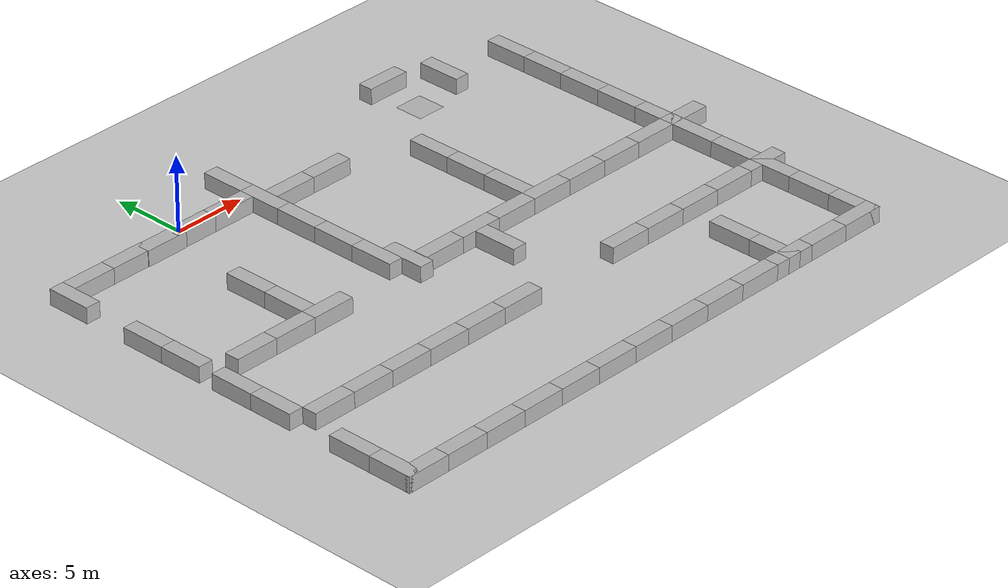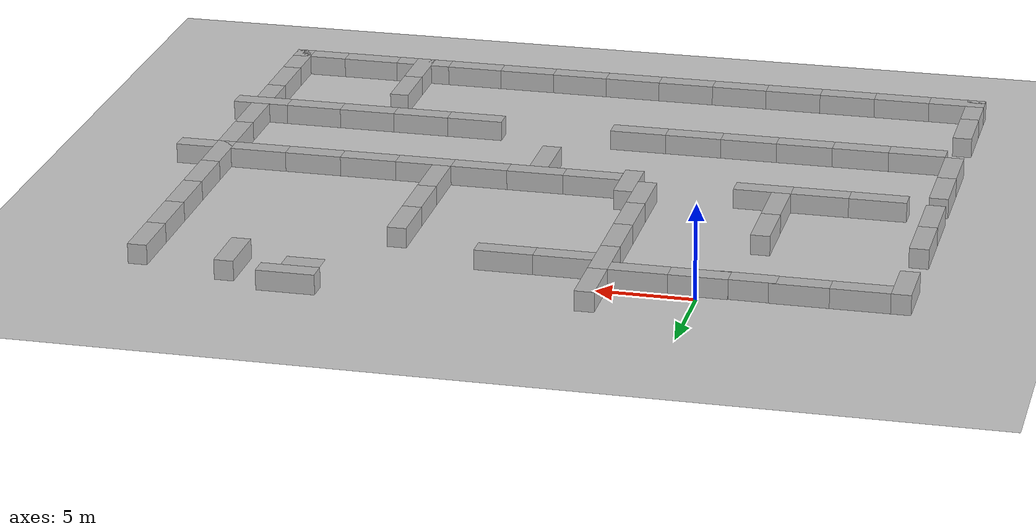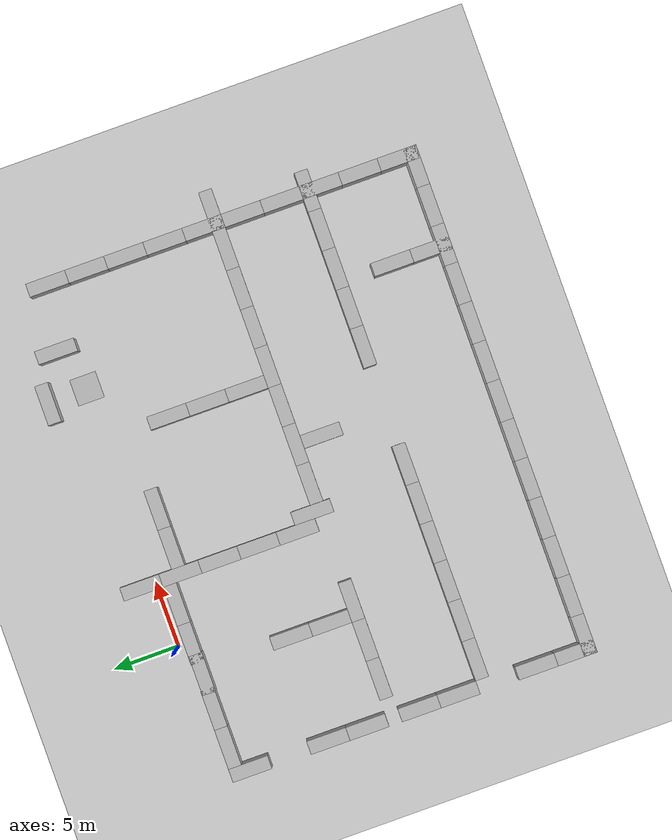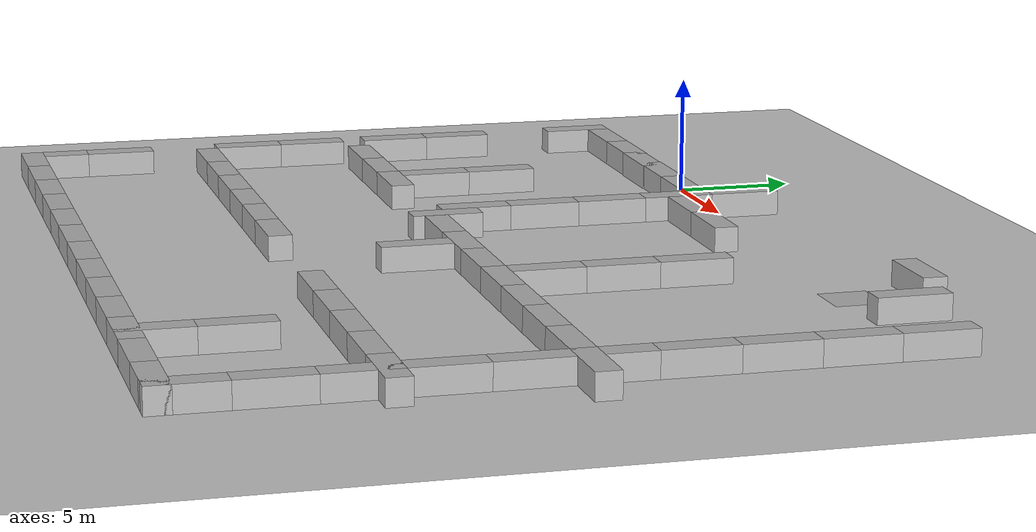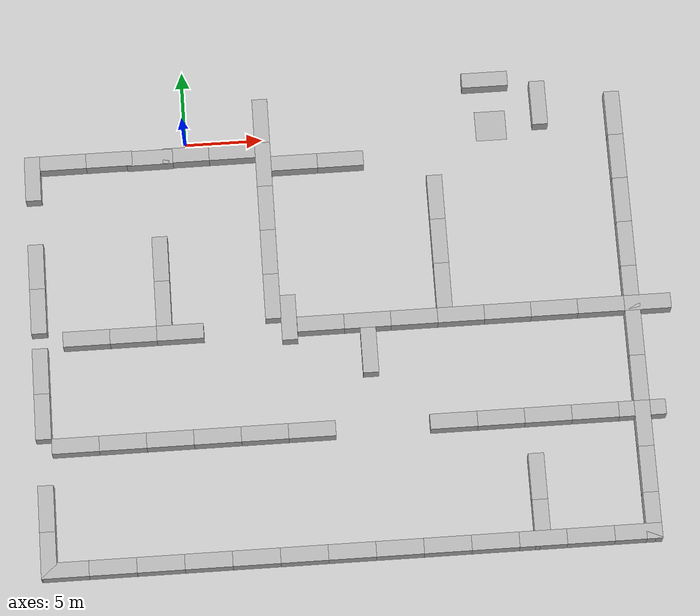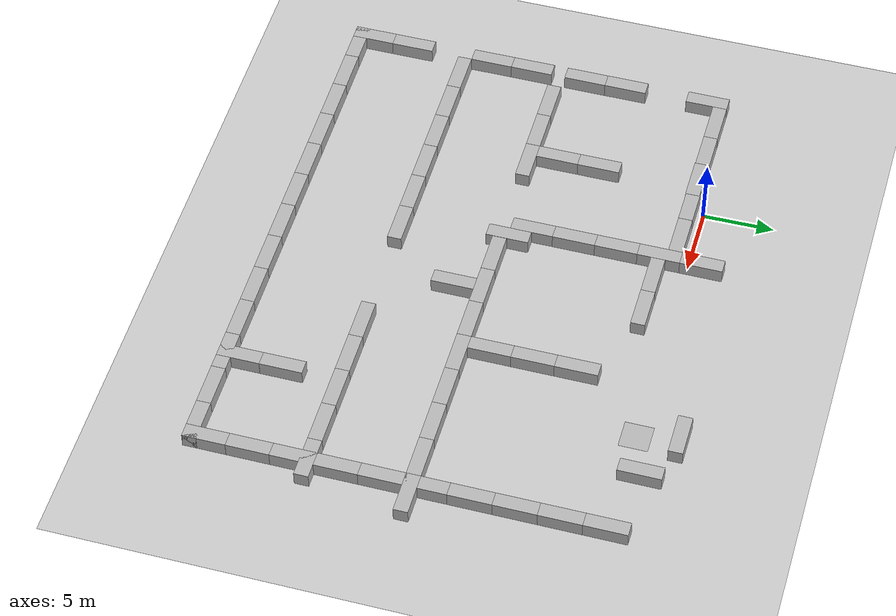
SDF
<sdf version="1.6">
 <world name="default">
  <model name="ground_plane">
   <static>1</static>
   <link name="link">
    <collision name="collision">
     <geometry><plane><normal>0 0 1</normal><size>100 100</size></plane></geometry>
     <surface>
      <contact><collide_bitmask>65535</collide_bitmask></contact>
      <friction><ode><mu>100</mu><mu2>50</mu2></ode></friction>
     </surface>
    </collision>
    <visual name="visual">
     <cast_shadows>0</cast_shadows>
     <geometry><plane><normal>0 0 1</normal><size>100 100</size></plane></geometry>
     <material>
      <script><uri>file://media/materials/scripts/gazebo.material</uri><name>Gazebo/Grey</name></script>
     </material>
    </visual>
   </link>
  </model>
  <model name="goal">
   <static>1</static>
   <link name="link">
    <visual name="visual">
     <geometry><mesh><uri>model://checkerboard_plane/meshes/checkerboard_plane.dae</uri></mesh></geometry>
    </visual>
   </link>
   <pose>20 0 0.01 0 -0 0</pose>
  </model>
  <model name="wall3">
   <static>1</static>
   <link name="chassis">
    <pose>0 0 1.5 0 -0 0</pose>
    <collision name="collision"><geometry><box><size>3 1 3</size></box></geometry></collision>
    <visual name="visual">
     <geometry><mesh><uri>model://brick_box_3x1x3/meshes/simple_box.dae</uri><scale>3 1 3</scale></mesh></geometry>
     <material>
      <script>
       <uri>model://brick_box_3x1x3/materials/scripts</uri>
       <uri>model://brick_box_3x1x3/materials/textures</uri>
       <name>BrickBox/Diffuse</name>
      </script>
     </material>
    </visual>
   </link>
   <pose>28 -27 -2 0 -0 1.5708</pose>
  </model>
  <model name="wall7">
   <static>1</static>
   <link name="chassis">
    <pose>0 0 1.5 0 -0 0</pose>
    <collision name="collision"><geometry><box><size>3 1 3</size></box></geometry></collision>
    <visual name="visual">
     <geometry><mesh><uri>model://brick_box_3x1x3/meshes/simple_box.dae</uri><scale>3 1 3</scale></mesh></geometry>
     <material>
      <script>
       <uri>model://brick_box_3x1x3/materials/scripts</uri>
       <uri>model://brick_box_3x1x3/materials/textures</uri>
       <name>BrickBox/Diffuse</name>
      </script>
     </material>
    </visual>
   </link>
   <pose>28 -24 -2 0 -0 1.5708</pose>
  </model>
  <model name="wall11">
   <static>1</static>
   <link name="chassis">
    <pose>0 0 1.5 0 -0 0</pose>
    <collision name="collision"><geometry><box><size>3 1 3</size></box></geometry></collision>
    <visual name="visual">
     <geometry><mesh><uri>model://brick_box_3x1x3/meshes/simple_box.dae</uri><scale>3 1 3</scale></mesh></geometry>
     <material>
      <script>
       <uri>model://brick_box_3x1x3/materials/scripts</uri>
       <uri>model://brick_box_3x1x3/materials/textures</uri>
       <name>BrickBox/Diffuse</name>
      </script>
     </material>
    </visual>
   </link>
   <pose>28 -21 -2 0 -0 1.5708</pose>
  </model>
  <model name="wall15">
   <static>1</static>
   <link name="chassis">
    <pose>0 0 1.5 0 -0 0</pose>
    <collision name="collision"><geometry><box><size>3 1 3</size></box></geometry></collision>
    <visual name="visual">
     <geometry><mesh><uri>model://brick_box_3x1x3/meshes/simple_box.dae</uri><scale>3 1 3</scale></mesh></geometry>
     <material>
      <script>
       <uri>model://brick_box_3x1x3/materials/scripts</uri>
       <uri>model://brick_box_3x1x3/materials/textures</uri>
       <name>BrickBox/Diffuse</name>
      </script>
     </material>
    </visual>
   </link>
   <pose>28 -18 -2 0 -0 1.5708</pose>
  </model>
  <model name="wall19">
   <static>1</static>
   <link name="chassis">
    <pose>0 0 1.5 0 -0 0</pose>
    <collision name="collision"><geometry><box><size>3 1 3</size></box></geometry></collision>
    <visual name="visual">
     <geometry><mesh><uri>model://brick_box_3x1x3/meshes/simple_box.dae</uri><scale>3 1 3</scale></mesh></geometry>
     <material>
      <script>
       <uri>model://brick_box_3x1x3/materials/scripts</uri>
       <uri>model://brick_box_3x1x3/materials/textures</uri>
       <name>BrickBox/Diffuse</name>
      </script>
     </material>
    </visual>
   </link>
   <pose>28 -15 -2 0 -0 1.5708</pose>
  </model>
  <model name="wall23">
   <static>1</static>
   <link name="chassis">
    <pose>0 0 1.5 0 -0 0</pose>
    <collision name="collision"><geometry><box><size>3 1 3</size></box></geometry></collision>
    <visual name="visual">
     <geometry><mesh><uri>model://brick_box_3x1x3/meshes/simple_box.dae</uri><scale>3 1 3</scale></mesh></geometry>
     <material>
      <script>
       <uri>model://brick_box_3x1x3/materials/scripts</uri>
       <uri>model://brick_box_3x1x3/materials/textures</uri>
       <name>BrickBox/Diffuse</name>
      </script>
     </material>
    </visual>
   </link>
   <pose>28 -12 -2 0 -0 1.5708</pose>
  </model>
  <model name="wall24">
   <static>1</static>
   <link name="chassis">
    <pose>0 0 1.5 0 -0 0</pose>
    <collision name="collision"><geometry><box><size>3 1 3</size></box></geometry></collision>
    <visual name="visual">
     <geometry><mesh><uri>model://brick_box_3x1x3/meshes/simple_box.dae</uri><scale>3 1 3</scale></mesh></geometry>
     <material>
      <script>
       <uri>model://brick_box_3x1x3/materials/scripts</uri>
       <uri>model://brick_box_3x1x3/materials/textures</uri>
       <name>BrickBox/Diffuse</name>
      </script>
     </material>
    </visual>
   </link>
   <pose>-9 -28 -2 0 -0 0</pose>
  </model>
  <model name="wall27">
   <static>1</static>
   <link name="chassis">
    <pose>0 0 1.5 0 -0 0</pose>
    <collision name="collision"><geometry><box><size>3 1 3</size></box></geometry></collision>
    <visual name="visual">
     <geometry><mesh><uri>model://brick_box_3x1x3/meshes/simple_box.dae</uri><scale>3 1 3</scale></mesh></geometry>
     <material>
      <script>
       <uri>model://brick_box_3x1x3/materials/scripts</uri>
       <uri>model://brick_box_3x1x3/materials/textures</uri>
       <name>BrickBox/Diffuse</name>
      </script>
     </material>
    </visual>
   </link>
   <pose>28 -9 -2 0 -0 1.5708</pose>
  </model>
  <model name="wall28">
   <static>1</static>
   <link name="chassis">
    <pose>0 0 1.5 0 -0 0</pose>
    <collision name="collision"><geometry><box><size>3 1 3</size></box></geometry></collision>
    <visual name="visual">
     <geometry><mesh><uri>model://brick_box_3x1x3/meshes/simple_box.dae</uri><scale>3 1 3</scale></mesh></geometry>
     <material>
      <script>
       <uri>model://brick_box_3x1x3/materials/scripts</uri>
       <uri>model://brick_box_3x1x3/materials/textures</uri>
       <name>BrickBox/Diffuse</name>
      </script>
     </material>
    </visual>
   </link>
   <pose>-6 -28 -2 0 -0 0</pose>
  </model>
  <model name="wall31">
   <static>1</static>
   <link name="chassis">
    <pose>0 0 1.5 0 -0 0</pose>
    <collision name="collision"><geometry><box><size>3 1 3</size></box></geometry></collision>
    <visual name="visual">
     <geometry><mesh><uri>model://brick_box_3x1x3/meshes/simple_box.dae</uri><scale>3 1 3</scale></mesh></geometry>
     <material>
      <script>
       <uri>model://brick_box_3x1x3/materials/scripts</uri>
       <uri>model://brick_box_3x1x3/materials/textures</uri>
       <name>BrickBox/Diffuse</name>
      </script>
     </material>
    </visual>
   </link>
   <pose>28 -6 -2 0 -0 1.5708</pose>
  </model>
  <model name="wall32">
   <static>1</static>
   <link name="chassis">
    <pose>0 0 1.5 0 -0 0</pose>
    <collision name="collision"><geometry><box><size>3 1 3</size></box></geometry></collision>
    <visual name="visual">
     <geometry><mesh><uri>model://brick_box_3x1x3/meshes/simple_box.dae</uri><scale>3 1 3</scale></mesh></geometry>
     <material>
      <script>
       <uri>model://brick_box_3x1x3/materials/scripts</uri>
       <uri>model://brick_box_3x1x3/materials/textures</uri>
       <name>BrickBox/Diffuse</name>
      </script>
     </material>
    </visual>
   </link>
   <pose>-3 -28 -2 0 -0 0</pose>
  </model>
  <model name="wall35">
   <static>1</static>
   <link name="chassis">
    <pose>0 0 1.5 0 -0 0</pose>
    <collision name="collision"><geometry><box><size>3 1 3</size></box></geometry></collision>
    <visual name="visual">
     <geometry><mesh><uri>model://brick_box_3x1x3/meshes/simple_box.dae</uri><scale>3 1 3</scale></mesh></geometry>
     <material>
      <script>
       <uri>model://brick_box_3x1x3/materials/scripts</uri>
       <uri>model://brick_box_3x1x3/materials/textures</uri>
       <name>BrickBox/Diffuse</name>
      </script>
     </material>
    </visual>
   </link>
   <pose>28 -3 -2 0 -0 1.5708</pose>
  </model>
  <model name="wall36">
   <static>1</static>
   <link name="chassis">
    <pose>0 0 1.5 0 -0 0</pose>
    <collision name="collision"><geometry><box><size>3 1 3</size></box></geometry></collision>
    <visual name="visual">
     <geometry><mesh><uri>model://brick_box_3x1x3/meshes/simple_box.dae</uri><scale>3 1 3</scale></mesh></geometry>
     <material>
      <script>
       <uri>model://brick_box_3x1x3/materials/scripts</uri>
       <uri>model://brick_box_3x1x3/materials/textures</uri>
       <name>BrickBox/Diffuse</name>
      </script>
     </material>
    </visual>
   </link>
   <pose>0 -28 -2 0 -0 0</pose>
  </model>
  <model name="wall39">
   <static>1</static>
   <link name="chassis">
    <pose>0 0 1.5 0 -0 0</pose>
    <collision name="collision"><geometry><box><size>3 1 3</size></box></geometry></collision>
    <visual name="visual">
     <geometry><mesh><uri>model://brick_box_3x1x3/meshes/simple_box.dae</uri><scale>3 1 3</scale></mesh></geometry>
     <material>
      <script>
       <uri>model://brick_box_3x1x3/materials/scripts</uri>
       <uri>model://brick_box_3x1x3/materials/textures</uri>
       <name>BrickBox/Diffuse</name>
      </script>
     </material>
    </visual>
   </link>
   <pose>28 0 -2 0 -0 1.5708</pose>
  </model>
  <model name="wall40">
   <static>1</static>
   <link name="chassis">
    <pose>0 0 1.5 0 -0 0</pose>
    <collision name="collision"><geometry><box><size>3 1 3</size></box></geometry></collision>
    <visual name="visual">
     <geometry><mesh><uri>model://brick_box_3x1x3/meshes/simple_box.dae</uri><scale>3 1 3</scale></mesh></geometry>
     <material>
      <script>
       <uri>model://brick_box_3x1x3/materials/scripts</uri>
       <uri>model://brick_box_3x1x3/materials/textures</uri>
       <name>BrickBox/Diffuse</name>
      </script>
     </material>
    </visual>
   </link>
   <pose>3 -28 -2 0 -0 0</pose>
  </model>
  <model name="wall44">
   <static>1</static>
   <link name="chassis">
    <pose>0 0 1.5 0 -0 0</pose>
    <collision name="collision"><geometry><box><size>3 1 3</size></box></geometry></collision>
    <visual name="visual">
     <geometry><mesh><uri>model://brick_box_3x1x3/meshes/simple_box.dae</uri><scale>3 1 3</scale></mesh></geometry>
     <material>
      <script>
       <uri>model://brick_box_3x1x3/materials/scripts</uri>
       <uri>model://brick_box_3x1x3/materials/textures</uri>
       <name>BrickBox/Diffuse</name>
      </script>
     </material>
    </visual>
   </link>
   <pose>6 -28 -2 0 -0 0</pose>
  </model>
  <model name="wall48">
   <static>1</static>
   <link name="chassis">
    <pose>0 0 1.5 0 -0 0</pose>
    <collision name="collision"><geometry><box><size>3 1 3</size></box></geometry></collision>
    <visual name="visual">
     <geometry><mesh><uri>model://brick_box_3x1x3/meshes/simple_box.dae</uri><scale>3 1 3</scale></mesh></geometry>
     <material>
      <script>
       <uri>model://brick_box_3x1x3/materials/scripts</uri>
       <uri>model://brick_box_3x1x3/materials/textures</uri>
       <name>BrickBox/Diffuse</name>
      </script>
     </material>
    </visual>
   </link>
   <pose>9 -28 -2 0 -0 0</pose>
  </model>
  <model name="wall52">
   <static>1</static>
   <link name="chassis">
    <pose>0 0 1.5 0 -0 0</pose>
    <collision name="collision"><geometry><box><size>3 1 3</size></box></geometry></collision>
    <visual name="visual">
     <geometry><mesh><uri>model://brick_box_3x1x3/meshes/simple_box.dae</uri><scale>3 1 3</scale></mesh></geometry>
     <material>
      <script>
       <uri>model://brick_box_3x1x3/materials/scripts</uri>
       <uri>model://brick_box_3x1x3/materials/textures</uri>
       <name>BrickBox/Diffuse</name>
      </script>
     </material>
    </visual>
   </link>
   <pose>12 -28 -2 0 -0 0</pose>
  </model>
  <model name="wall56">
   <static>1</static>
   <link name="chassis">
    <pose>0 0 1.5 0 -0 0</pose>
    <collision name="collision"><geometry><box><size>3 1 3</size></box></geometry></collision>
    <visual name="visual">
     <geometry><mesh><uri>model://brick_box_3x1x3/meshes/simple_box.dae</uri><scale>3 1 3</scale></mesh></geometry>
     <material>
      <script>
       <uri>model://brick_box_3x1x3/materials/scripts</uri>
       <uri>model://brick_box_3x1x3/materials/textures</uri>
       <name>BrickBox/Diffuse</name>
      </script>
     </material>
    </visual>
   </link>
   <pose>15 -28 -2 0 -0 0</pose>
  </model>
  <model name="wall60">
   <static>1</static>
   <link name="chassis">
    <pose>0 0 1.5 0 -0 0</pose>
    <collision name="collision"><geometry><box><size>3 1 3</size></box></geometry></collision>
    <visual name="visual">
     <geometry><mesh><uri>model://brick_box_3x1x3/meshes/simple_box.dae</uri><scale>3 1 3</scale></mesh></geometry>
     <material>
      <script>
       <uri>model://brick_box_3x1x3/materials/scripts</uri>
       <uri>model://brick_box_3x1x3/materials/textures</uri>
       <name>BrickBox/Diffuse</name>
      </script>
     </material>
    </visual>
   </link>
   <pose>18 -28 -2 0 -0 0</pose>
  </model>
  <model name="wall64">
   <static>1</static>
   <link name="chassis">
    <pose>0 0 1.5 0 -0 0</pose>
    <collision name="collision"><geometry><box><size>3 1 3</size></box></geometry></collision>
    <visual name="visual">
     <geometry><mesh><uri>model://brick_box_3x1x3/meshes/simple_box.dae</uri><scale>3 1 3</scale></mesh></geometry>
     <material>
      <script>
       <uri>model://brick_box_3x1x3/materials/scripts</uri>
       <uri>model://brick_box_3x1x3/materials/textures</uri>
       <name>BrickBox/Diffuse</name>
      </script>
     </material>
    </visual>
   </link>
   <pose>21 -28 -2 0 -0 0</pose>
  </model>
  <model name="wall68">
   <static>1</static>
   <link name="chassis">
    <pose>0 0 1.5 0 -0 0</pose>
    <collision name="collision"><geometry><box><size>3 1 3</size></box></geometry></collision>
    <visual name="visual">
     <geometry><mesh><uri>model://brick_box_3x1x3/meshes/simple_box.dae</uri><scale>3 1 3</scale></mesh></geometry>
     <material>
      <script>
       <uri>model://brick_box_3x1x3/materials/scripts</uri>
       <uri>model://brick_box_3x1x3/materials/textures</uri>
       <name>BrickBox/Diffuse</name>
      </script>
     </material>
    </visual>
   </link>
   <pose>24 -28 -2 0 -0 0</pose>
  </model>
  <model name="wall72">
   <static>1</static>
   <link name="chassis">
    <pose>0 0 1.5 0 -0 0</pose>
    <collision name="collision"><geometry><box><size>3 1 3</size></box></geometry></collision>
    <visual name="visual">
     <geometry><mesh><uri>model://brick_box_3x1x3/meshes/simple_box.dae</uri><scale>3 1 3</scale></mesh></geometry>
     <material>
      <script>
       <uri>model://brick_box_3x1x3/materials/scripts</uri>
       <uri>model://brick_box_3x1x3/materials/textures</uri>
       <name>BrickBox/Diffuse</name>
      </script>
     </material>
    </visual>
   </link>
   <pose>27 -28 -2 0 -0 0</pose>
  </model>
  <model name="wall98">
   <static>1</static>
   <link name="chassis">
    <pose>0 0 1.5 0 -0 0</pose>
    <collision name="collision"><geometry><box><size>3 1 3</size></box></geometry></collision>
    <visual name="visual">
     <geometry><mesh><uri>model://brick_box_3x1x3/meshes/simple_box.dae</uri><scale>3 1 3</scale></mesh></geometry>
     <material>
      <script>
       <uri>model://brick_box_3x1x3/materials/scripts</uri>
       <uri>model://brick_box_3x1x3/materials/textures</uri>
       <name>BrickBox/Diffuse</name>
      </script>
     </material>
    </visual>
   </link>
   <pose>-7 -13 -2 0 -0 0</pose>
  </model>
  <model name="wall99">
   <static>1</static>
   <link name="chassis">
    <pose>0 0 1.5 0 -0 0</pose>
    <collision name="collision"><geometry><box><size>3 1 3</size></box></geometry></collision>
    <visual name="visual">
     <geometry><mesh><uri>model://brick_box_3x1x3/meshes/simple_box.dae</uri><scale>3 1 3</scale></mesh></geometry>
     <material>
      <script>
       <uri>model://brick_box_3x1x3/materials/scripts</uri>
       <uri>model://brick_box_3x1x3/materials/textures</uri>
       <name>BrickBox/Diffuse</name>
      </script>
     </material>
    </visual>
   </link>
   <pose>-4 -13 -2 0 -0 0</pose>
  </model>
  <model name="wall100">
   <static>1</static>
   <link name="chassis">
    <pose>0 0 1.5 0 -0 0</pose>
    <collision name="collision"><geometry><box><size>3 1 3</size></box></geometry></collision>
    <visual name="visual">
     <geometry><mesh><uri>model://brick_box_3x1x3/meshes/simple_box.dae</uri><scale>3 1 3</scale></mesh></geometry>
     <material>
      <script>
       <uri>model://brick_box_3x1x3/materials/scripts</uri>
       <uri>model://brick_box_3x1x3/materials/textures</uri>
       <name>BrickBox/Diffuse</name>
      </script>
     </material>
    </visual>
   </link>
   <pose>-1 -13 -2 0 -0 0</pose>
  </model>
  <model name="wall101">
   <static>1</static>
   <link name="chassis">
    <pose>0 0 1.5 0 -0 0</pose>
    <collision name="collision"><geometry><box><size>3 1 3</size></box></geometry></collision>
    <visual name="visual">
     <geometry><mesh><uri>model://brick_box_3x1x3/meshes/simple_box.dae</uri><scale>3 1 3</scale></mesh></geometry>
     <material>
      <script>
       <uri>model://brick_box_3x1x3/materials/scripts</uri>
       <uri>model://brick_box_3x1x3/materials/textures</uri>
       <name>BrickBox/Diffuse</name>
      </script>
     </material>
    </visual>
   </link>
   <pose>8 -13 -2 0 -0 0</pose>
  </model>
  <model name="wall102">
   <static>1</static>
   <link name="chassis">
    <pose>0 0 1.5 0 -0 0</pose>
    <collision name="collision"><geometry><box><size>3 1 3</size></box></geometry></collision>
    <visual name="visual">
     <geometry><mesh><uri>model://brick_box_3x1x3/meshes/simple_box.dae</uri><scale>3 1 3</scale></mesh></geometry>
     <material>
      <script>
       <uri>model://brick_box_3x1x3/materials/scripts</uri>
       <uri>model://brick_box_3x1x3/materials/textures</uri>
       <name>BrickBox/Diffuse</name>
      </script>
     </material>
    </visual>
   </link>
   <pose>11 -13 -2 0 -0 0</pose>
  </model>
  <model name="wall103">
   <static>1</static>
   <link name="chassis">
    <pose>0 0 1.5 0 -0 0</pose>
    <collision name="collision"><geometry><box><size>3 1 3</size></box></geometry></collision>
    <visual name="visual">
     <geometry><mesh><uri>model://brick_box_3x1x3/meshes/simple_box.dae</uri><scale>3 1 3</scale></mesh></geometry>
     <material>
      <script>
       <uri>model://brick_box_3x1x3/materials/scripts</uri>
       <uri>model://brick_box_3x1x3/materials/textures</uri>
       <name>BrickBox/Diffuse</name>
      </script>
     </material>
    </visual>
   </link>
   <pose>14 -13 -2 0 -0 0</pose>
  </model>
  <model name="wall104">
   <static>1</static>
   <link name="chassis">
    <pose>0 0 1.5 0 -0 0</pose>
    <collision name="collision"><geometry><box><size>3 1 3</size></box></geometry></collision>
    <visual name="visual">
     <geometry><mesh><uri>model://brick_box_3x1x3/meshes/simple_box.dae</uri><scale>3 1 3</scale></mesh></geometry>
     <material>
      <script>
       <uri>model://brick_box_3x1x3/materials/scripts</uri>
       <uri>model://brick_box_3x1x3/materials/textures</uri>
       <name>BrickBox/Diffuse</name>
      </script>
     </material>
    </visual>
   </link>
   <pose>17 -13 -2 0 -0 0</pose>
  </model>
  <model name="wall105">
   <static>1</static>
   <link name="chassis">
    <pose>0 0 1.5 0 -0 0</pose>
    <collision name="collision"><geometry><box><size>3 1 3</size></box></geometry></collision>
    <visual name="visual">
     <geometry><mesh><uri>model://brick_box_3x1x3/meshes/simple_box.dae</uri><scale>3 1 3</scale></mesh></geometry>
     <material>
      <script>
       <uri>model://brick_box_3x1x3/materials/scripts</uri>
       <uri>model://brick_box_3x1x3/materials/textures</uri>
       <name>BrickBox/Diffuse</name>
      </script>
     </material>
    </visual>
   </link>
   <pose>20 -13 -2 0 -0 0</pose>
  </model>
  <model name="wall106">
   <static>1</static>
   <link name="chassis">
    <pose>0 0 1.5 0 -0 0</pose>
    <collision name="collision"><geometry><box><size>3 1 3</size></box></geometry></collision>
    <visual name="visual">
     <geometry><mesh><uri>model://brick_box_3x1x3/meshes/simple_box.dae</uri><scale>3 1 3</scale></mesh></geometry>
     <material>
      <script>
       <uri>model://brick_box_3x1x3/materials/scripts</uri>
       <uri>model://brick_box_3x1x3/materials/textures</uri>
       <name>BrickBox/Diffuse</name>
      </script>
     </material>
    </visual>
   </link>
   <pose>23 -13 -2 0 -0 0</pose>
  </model>
  <model name="wall107">
   <static>1</static>
   <link name="chassis">
    <pose>0 0 1.5 0 -0 0</pose>
    <collision name="collision"><geometry><box><size>3 1 3</size></box></geometry></collision>
    <visual name="visual">
     <geometry><mesh><uri>model://brick_box_3x1x3/meshes/simple_box.dae</uri><scale>3 1 3</scale></mesh></geometry>
     <material>
      <script>
       <uri>model://brick_box_3x1x3/materials/scripts</uri>
       <uri>model://brick_box_3x1x3/materials/textures</uri>
       <name>BrickBox/Diffuse</name>
      </script>
     </material>
    </visual>
   </link>
   <pose>26 -13 -2 0 -0 0</pose>
  </model>
  <model name="wall108">
   <static>1</static>
   <link name="chassis">
    <pose>0 0 1.5 0 -0 0</pose>
    <collision name="collision"><geometry><box><size>3 1 3</size></box></geometry></collision>
    <visual name="visual">
     <geometry><mesh><uri>model://brick_box_3x1x3/meshes/simple_box.dae</uri><scale>3 1 3</scale></mesh></geometry>
     <material>
      <script>
       <uri>model://brick_box_3x1x3/materials/scripts</uri>
       <uri>model://brick_box_3x1x3/materials/textures</uri>
       <name>BrickBox/Diffuse</name>
      </script>
     </material>
    </visual>
   </link>
   <pose>29 -13 -2 0 -0 0</pose>
  </model>
  <model name="wall109">
   <static>1</static>
   <link name="chassis">
    <pose>0 0 1.5 0 -0 0</pose>
    <collision name="collision"><geometry><box><size>3 1 3</size></box></geometry></collision>
    <visual name="visual">
     <geometry><mesh><uri>model://brick_box_3x1x3/meshes/simple_box.dae</uri><scale>3 1 3</scale></mesh></geometry>
     <material>
      <script>
       <uri>model://brick_box_3x1x3/materials/scripts</uri>
       <uri>model://brick_box_3x1x3/materials/textures</uri>
       <name>BrickBox/Diffuse</name>
      </script>
     </material>
    </visual>
   </link>
   <pose>-10 -27 -2 0 -0 1.5708</pose>
  </model>
  <model name="wall110">
   <static>1</static>
   <link name="chassis">
    <pose>0 0 1.5 0 -0 0</pose>
    <collision name="collision"><geometry><box><size>3 1 3</size></box></geometry></collision>
    <visual name="visual">
     <geometry><mesh><uri>model://brick_box_3x1x3/meshes/simple_box.dae</uri><scale>3 1 3</scale></mesh></geometry>
     <material>
      <script>
       <uri>model://brick_box_3x1x3/materials/scripts</uri>
       <uri>model://brick_box_3x1x3/materials/textures</uri>
       <name>BrickBox/Diffuse</name>
      </script>
     </material>
    </visual>
   </link>
   <pose>-10 -24 -2 0 -0 1.5708</pose>
  </model>
  <model name="wall111">
   <static>1</static>
   <link name="chassis">
    <pose>0 0 1.5 0 -0 0</pose>
    <collision name="collision"><geometry><box><size>3 1 3</size></box></geometry></collision>
    <visual name="visual">
     <geometry><mesh><uri>model://brick_box_3x1x3/meshes/simple_box.dae</uri><scale>3 1 3</scale></mesh></geometry>
     <material>
      <script>
       <uri>model://brick_box_3x1x3/materials/scripts</uri>
       <uri>model://brick_box_3x1x3/materials/textures</uri>
       <name>BrickBox/Diffuse</name>
      </script>
     </material>
    </visual>
   </link>
   <pose>-10 -18 -2 0 -0 1.5708</pose>
  </model>
  <model name="wall112">
   <static>1</static>
   <link name="chassis">
    <pose>0 0 1.5 0 -0 0</pose>
    <collision name="collision"><geometry><box><size>3 1 3</size></box></geometry></collision>
    <visual name="visual">
     <geometry><mesh><uri>model://brick_box_3x1x3/meshes/simple_box.dae</uri><scale>3 1 3</scale></mesh></geometry>
     <material>
      <script>
       <uri>model://brick_box_3x1x3/materials/scripts</uri>
       <uri>model://brick_box_3x1x3/materials/textures</uri>
       <name>BrickBox/Diffuse</name>
      </script>
     </material>
    </visual>
   </link>
   <pose>-10 -15 -2 0 -0 1.5708</pose>
  </model>
  <model name="wall115">
   <static>1</static>
   <link name="chassis">
    <pose>0 0 1.5 0 -0 0</pose>
    <collision name="collision"><geometry><box><size>3 1 3</size></box></geometry></collision>
    <visual name="visual">
     <geometry><mesh><uri>model://brick_box_3x1x3/meshes/simple_box.dae</uri><scale>3 1 3</scale></mesh></geometry>
     <material>
      <script>
       <uri>model://brick_box_3x1x3/materials/scripts</uri>
       <uri>model://brick_box_3x1x3/materials/textures</uri>
       <name>BrickBox/Diffuse</name>
      </script>
     </material>
    </visual>
   </link>
   <pose>-8 -20 -2 0 -0 0</pose>
  </model>
  <model name="wall116">
   <static>1</static>
   <link name="chassis">
    <pose>0 0 1.5 0 -0 0</pose>
    <collision name="collision"><geometry><box><size>3 1 3</size></box></geometry></collision>
    <visual name="visual">
     <geometry><mesh><uri>model://brick_box_3x1x3/meshes/simple_box.dae</uri><scale>3 1 3</scale></mesh></geometry>
     <material>
      <script>
       <uri>model://brick_box_3x1x3/materials/scripts</uri>
       <uri>model://brick_box_3x1x3/materials/textures</uri>
       <name>BrickBox/Diffuse</name>
      </script>
     </material>
    </visual>
   </link>
   <pose>-5 -20 -2 0 -0 0</pose>
  </model>
  <model name="wall117">
   <static>1</static>
   <link name="chassis">
    <pose>0 0 1.5 0 -0 0</pose>
    <collision name="collision"><geometry><box><size>3 1 3</size></box></geometry></collision>
    <visual name="visual">
     <geometry><mesh><uri>model://brick_box_3x1x3/meshes/simple_box.dae</uri><scale>3 1 3</scale></mesh></geometry>
     <material>
      <script>
       <uri>model://brick_box_3x1x3/materials/scripts</uri>
       <uri>model://brick_box_3x1x3/materials/textures</uri>
       <name>BrickBox/Diffuse</name>
      </script>
     </material>
    </visual>
   </link>
   <pose>-2 -20 -2 0 -0 0</pose>
  </model>
  <model name="wall118">
   <static>1</static>
   <link name="chassis">
    <pose>0 0 1.5 0 -0 0</pose>
    <collision name="collision"><geometry><box><size>3 1 3</size></box></geometry></collision>
    <visual name="visual">
     <geometry><mesh><uri>model://brick_box_3x1x3/meshes/simple_box.dae</uri><scale>3 1 3</scale></mesh></geometry>
     <material>
      <script>
       <uri>model://brick_box_3x1x3/materials/scripts</uri>
       <uri>model://brick_box_3x1x3/materials/textures</uri>
       <name>BrickBox/Diffuse</name>
      </script>
     </material>
    </visual>
   </link>
   <pose>1 -20 -2 0 -0 0</pose>
  </model>
  <model name="wall119">
   <static>1</static>
   <link name="chassis">
    <pose>0 0 1.5 0 -0 0</pose>
    <collision name="collision"><geometry><box><size>3 1 3</size></box></geometry></collision>
    <visual name="visual">
     <geometry><mesh><uri>model://brick_box_3x1x3/meshes/simple_box.dae</uri><scale>3 1 3</scale></mesh></geometry>
     <material>
      <script>
       <uri>model://brick_box_3x1x3/materials/scripts</uri>
       <uri>model://brick_box_3x1x3/materials/textures</uri>
       <name>BrickBox/Diffuse</name>
      </script>
     </material>
    </visual>
   </link>
   <pose>4 -20 -2 0 -0 0</pose>
  </model>
  <model name="wall120">
   <static>1</static>
   <link name="chassis">
    <pose>0 0 1.5 0 -0 0</pose>
    <collision name="collision"><geometry><box><size>3 1 3</size></box></geometry></collision>
    <visual name="visual">
     <geometry><mesh><uri>model://brick_box_3x1x3/meshes/simple_box.dae</uri><scale>3 1 3</scale></mesh></geometry>
     <material>
      <script>
       <uri>model://brick_box_3x1x3/materials/scripts</uri>
       <uri>model://brick_box_3x1x3/materials/textures</uri>
       <name>BrickBox/Diffuse</name>
      </script>
     </material>
    </visual>
   </link>
   <pose>7 -20 -2 0 -0 0</pose>
  </model>
  <model name="wall121">
   <static>1</static>
   <link name="chassis">
    <pose>0 0 1.5 0 -0 0</pose>
    <collision name="collision"><geometry><box><size>3 1 3</size></box></geometry></collision>
    <visual name="visual">
     <geometry><mesh><uri>model://brick_box_3x1x3/meshes/simple_box.dae</uri><scale>3 1 3</scale></mesh></geometry>
     <material>
      <script>
       <uri>model://brick_box_3x1x3/materials/scripts</uri>
       <uri>model://brick_box_3x1x3/materials/textures</uri>
       <name>BrickBox/Diffuse</name>
      </script>
     </material>
    </visual>
   </link>
   <pose>16 -20 -2 0 -0 0</pose>
  </model>
  <model name="wall122">
   <static>1</static>
   <link name="chassis">
    <pose>0 0 1.5 0 -0 0</pose>
    <collision name="collision"><geometry><box><size>3 1 3</size></box></geometry></collision>
    <visual name="visual">
     <geometry><mesh><uri>model://brick_box_3x1x3/meshes/simple_box.dae</uri><scale>3 1 3</scale></mesh></geometry>
     <material>
      <script>
       <uri>model://brick_box_3x1x3/materials/scripts</uri>
       <uri>model://brick_box_3x1x3/materials/textures</uri>
       <name>BrickBox/Diffuse</name>
      </script>
     </material>
    </visual>
   </link>
   <pose>19 -20 -2 0 -0 0</pose>
  </model>
  <model name="wall123">
   <static>1</static>
   <link name="chassis">
    <pose>0 0 1.5 0 -0 0</pose>
    <collision name="collision"><geometry><box><size>3 1 3</size></box></geometry></collision>
    <visual name="visual">
     <geometry><mesh><uri>model://brick_box_3x1x3/meshes/simple_box.dae</uri><scale>3 1 3</scale></mesh></geometry>
     <material>
      <script>
       <uri>model://brick_box_3x1x3/materials/scripts</uri>
       <uri>model://brick_box_3x1x3/materials/textures</uri>
       <name>BrickBox/Diffuse</name>
      </script>
     </material>
    </visual>
   </link>
   <pose>22 -20 -2 0 -0 0</pose>
  </model>
  <model name="wall124">
   <static>1</static>
   <link name="chassis">
    <pose>0 0 1.5 0 -0 0</pose>
    <collision name="collision"><geometry><box><size>3 1 3</size></box></geometry></collision>
    <visual name="visual">
     <geometry><mesh><uri>model://brick_box_3x1x3/meshes/simple_box.dae</uri><scale>3 1 3</scale></mesh></geometry>
     <material>
      <script>
       <uri>model://brick_box_3x1x3/materials/scripts</uri>
       <uri>model://brick_box_3x1x3/materials/textures</uri>
       <name>BrickBox/Diffuse</name>
      </script>
     </material>
    </visual>
   </link>
   <pose>25 -20 -2 0 -0 0</pose>
  </model>
  <model name="wall125">
   <static>1</static>
   <link name="chassis">
    <pose>0 0 1.5 0 -0 0</pose>
    <collision name="collision"><geometry><box><size>3 1 3</size></box></geometry></collision>
    <visual name="visual">
     <geometry><mesh><uri>model://brick_box_3x1x3/meshes/simple_box.dae</uri><scale>3 1 3</scale></mesh></geometry>
     <material>
      <script>
       <uri>model://brick_box_3x1x3/materials/scripts</uri>
       <uri>model://brick_box_3x1x3/materials/textures</uri>
       <name>BrickBox/Diffuse</name>
      </script>
     </material>
    </visual>
   </link>
   <pose>28 -20 -2 0 -0 0</pose>
  </model>
  <model name="wall126">
   <static>1</static>
   <link name="chassis">
    <pose>0 0 1.5 0 -0 0</pose>
    <collision name="collision"><geometry><box><size>3 1 3</size></box></geometry></collision>
    <visual name="visual">
     <geometry><mesh><uri>model://brick_box_3x1x3/meshes/simple_box.dae</uri><scale>3 1 3</scale></mesh></geometry>
     <material>
      <script>
       <uri>model://brick_box_3x1x3/materials/scripts</uri>
       <uri>model://brick_box_3x1x3/materials/textures</uri>
       <name>BrickBox/Diffuse</name>
      </script>
     </material>
    </visual>
   </link>
   <pose>21 -27 -2 0 -0 1.5708</pose>
  </model>
  <model name="wall127">
   <static>1</static>
   <link name="chassis">
    <pose>0 0 1.5 0 -0 0</pose>
    <collision name="collision"><geometry><box><size>3 1 3</size></box></geometry></collision>
    <visual name="visual">
     <geometry><mesh><uri>model://brick_box_3x1x3/meshes/simple_box.dae</uri><scale>3 1 3</scale></mesh></geometry>
     <material>
      <script>
       <uri>model://brick_box_3x1x3/materials/scripts</uri>
       <uri>model://brick_box_3x1x3/materials/textures</uri>
       <name>BrickBox/Diffuse</name>
      </script>
     </material>
    </visual>
   </link>
   <pose>21 -24 -2 0 -0 1.5708</pose>
  </model>
  <model name="wall129">
   <static>1</static>
   <link name="chassis">
    <pose>0 0 1.5 0 -0 0</pose>
    <collision name="collision"><geometry><box><size>3 1 3</size></box></geometry></collision>
    <visual name="visual">
     <geometry><mesh><uri>model://brick_box_3x1x3/meshes/simple_box.dae</uri><scale>3 1 3</scale></mesh></geometry>
     <material>
      <script>
       <uri>model://brick_box_3x1x3/materials/scripts</uri>
       <uri>model://brick_box_3x1x3/materials/textures</uri>
       <name>BrickBox/Diffuse</name>
      </script>
     </material>
    </visual>
   </link>
   <pose>11 -15 -2 0 -0 1.5708</pose>
  </model>
  <model name="wall130">
   <static>1</static>
   <link name="chassis">
    <pose>0 0 1.5 0 -0 0</pose>
    <collision name="collision"><geometry><box><size>3 1 3</size></box></geometry></collision>
    <visual name="visual">
     <geometry><mesh><uri>model://brick_box_3x1x3/meshes/simple_box.dae</uri><scale>3 1 3</scale></mesh></geometry>
     <material>
      <script>
       <uri>model://brick_box_3x1x3/materials/scripts</uri>
       <uri>model://brick_box_3x1x3/materials/textures</uri>
       <name>BrickBox/Diffuse</name>
      </script>
     </material>
    </visual>
   </link>
   <pose>5 -11 -2 0 -0 1.5708</pose>
  </model>
  <model name="wall131">
   <static>1</static>
   <link name="chassis">
    <pose>0 0 1.5 0 -0 0</pose>
    <collision name="collision"><geometry><box><size>3 1 3</size></box></geometry></collision>
    <visual name="visual">
     <geometry><mesh><uri>model://brick_box_3x1x3/meshes/simple_box.dae</uri><scale>3 1 3</scale></mesh></geometry>
     <material>
      <script>
       <uri>model://brick_box_3x1x3/materials/scripts</uri>
       <uri>model://brick_box_3x1x3/materials/textures</uri>
       <name>BrickBox/Diffuse</name>
      </script>
     </material>
    </visual>
   </link>
   <pose>5 -8 -2 0 -0 1.5708</pose>
  </model>
  <model name="wall132">
   <static>1</static>
   <link name="chassis">
    <pose>0 0 1.5 0 -0 0</pose>
    <collision name="collision"><geometry><box><size>3 1 3</size></box></geometry></collision>
    <visual name="visual">
     <geometry><mesh><uri>model://brick_box_3x1x3/meshes/simple_box.dae</uri><scale>3 1 3</scale></mesh></geometry>
     <material>
      <script>
       <uri>model://brick_box_3x1x3/materials/scripts</uri>
       <uri>model://brick_box_3x1x3/materials/textures</uri>
       <name>BrickBox/Diffuse</name>
      </script>
     </material>
    </visual>
   </link>
   <pose>5 -5 -2 0 -0 1.5708</pose>
  </model>
  <model name="wall133">
   <static>1</static>
   <link name="chassis">
    <pose>0 0 1.5 0 -0 0</pose>
    <collision name="collision"><geometry><box><size>3 1 3</size></box></geometry></collision>
    <visual name="visual">
     <geometry><mesh><uri>model://brick_box_3x1x3/meshes/simple_box.dae</uri><scale>3 1 3</scale></mesh></geometry>
     <material>
      <script>
       <uri>model://brick_box_3x1x3/materials/scripts</uri>
       <uri>model://brick_box_3x1x3/materials/textures</uri>
       <name>BrickBox/Diffuse</name>
      </script>
     </material>
    </visual>
   </link>
   <pose>5 -2 -2 0 -0 1.5708</pose>
  </model>
  <model name="wall134">
   <static>1</static>
   <link name="chassis">
    <pose>0 0 1.5 0 -0 0</pose>
    <collision name="collision"><geometry><box><size>3 1 3</size></box></geometry></collision>
    <visual name="visual">
     <geometry><mesh><uri>model://brick_box_3x1x3/meshes/simple_box.dae</uri><scale>3 1 3</scale></mesh></geometry>
     <material>
      <script>
       <uri>model://brick_box_3x1x3/materials/scripts</uri>
       <uri>model://brick_box_3x1x3/materials/textures</uri>
       <name>BrickBox/Diffuse</name>
      </script>
     </material>
    </visual>
   </link>
   <pose>5 1 -2 0 -0 1.5708</pose>
  </model>
  <model name="wall149">
   <static>1</static>
   <link name="chassis">
    <pose>0 0 1.5 0 -0 0</pose>
    <collision name="collision"><geometry><box><size>3 1 3</size></box></geometry></collision>
    <visual name="visual">
     <geometry><mesh><uri>model://brick_box_3x1x3/meshes/simple_box.dae</uri><scale>3 1 3</scale></mesh></geometry>
     <material>
      <script>
       <uri>model://brick_box_3x1x3/materials/scripts</uri>
       <uri>model://brick_box_3x1x3/materials/textures</uri>
       <name>BrickBox/Diffuse</name>
      </script>
     </material>
    </visual>
   </link>
   <pose>-10 -11 -2 0 -0 1.5708</pose>
  </model>
  <model name="wall150">
   <static>1</static>
   <link name="chassis">
    <pose>0 0 1.5 0 -0 0</pose>
    <collision name="collision"><geometry><box><size>3 1 3</size></box></geometry></collision>
    <visual name="visual">
     <geometry><mesh><uri>model://brick_box_3x1x3/meshes/simple_box.dae</uri><scale>3 1 3</scale></mesh></geometry>
     <material>
      <script>
       <uri>model://brick_box_3x1x3/materials/scripts</uri>
       <uri>model://brick_box_3x1x3/materials/textures</uri>
       <name>BrickBox/Diffuse</name>
      </script>
     </material>
    </visual>
   </link>
   <pose>-10 -8 -2 0 -0 1.5708</pose>
  </model>
  <model name="wall152">
   <static>1</static>
   <link name="chassis">
    <pose>0 0 1.5 0 -0 0</pose>
    <collision name="collision"><geometry><box><size>3 1 3</size></box></geometry></collision>
    <visual name="visual">
     <geometry><mesh><uri>model://brick_box_3x1x3/meshes/simple_box.dae</uri><scale>3 1 3</scale></mesh></geometry>
     <material>
      <script>
       <uri>model://brick_box_3x1x3/materials/scripts</uri>
       <uri>model://brick_box_3x1x3/materials/textures</uri>
       <name>BrickBox/Diffuse</name>
      </script>
     </material>
    </visual>
   </link>
   <pose>-10 -2 -2 0 -0 1.5708</pose>
  </model>
  <model name="wall158">
   <static>1</static>
   <link name="chassis">
    <pose>0 0 1.5 0 -0 0</pose>
    <collision name="collision"><geometry><box><size>3 1 3</size></box></geometry></collision>
    <visual name="visual">
     <geometry><mesh><uri>model://brick_box_3x1x3/meshes/simple_box.dae</uri><scale>3 1 3</scale></mesh></geometry>
     <material>
      <script>
       <uri>model://brick_box_3x1x3/materials/scripts</uri>
       <uri>model://brick_box_3x1x3/materials/textures</uri>
       <name>BrickBox/Diffuse</name>
      </script>
     </material>
    </visual>
   </link>
   <pose>-2.35697 -1.04035 -2 0 -0 0</pose>
  </model>
  <model name="wall160">
   <static>1</static>
   <link name="chassis">
    <pose>0 0 1.5 0 -0 0</pose>
    <collision name="collision"><geometry><box><size>3 1 3</size></box></geometry></collision>
    <visual name="visual">
     <geometry><mesh><uri>model://brick_box_3x1x3/meshes/simple_box.dae</uri><scale>3 1 3</scale></mesh></geometry>
     <material>
      <script>
       <uri>model://brick_box_3x1x3/materials/scripts</uri>
       <uri>model://brick_box_3x1x3/materials/textures</uri>
       <name>BrickBox/Diffuse</name>
      </script>
     </material>
    </visual>
   </link>
   <pose>-2 -11 -2 0 -0 1.5708</pose>
  </model>
  <model name="wall161">
   <static>1</static>
   <link name="chassis">
    <pose>0 0 1.5 0 -0 0</pose>
    <collision name="collision"><geometry><box><size>3 1 3</size></box></geometry></collision>
    <visual name="visual">
     <geometry><mesh><uri>model://brick_box_3x1x3/meshes/simple_box.dae</uri><scale>3 1 3</scale></mesh></geometry>
     <material>
      <script>
       <uri>model://brick_box_3x1x3/materials/scripts</uri>
       <uri>model://brick_box_3x1x3/materials/textures</uri>
       <name>BrickBox/Diffuse</name>
      </script>
     </material>
    </visual>
   </link>
   <pose>-2 -8 -2 0 -0 1.5708</pose>
  </model>
  <model name="wall162">
   <static>1</static>
   <link name="chassis">
    <pose>0 0 1.5 0 -0 0</pose>
    <collision name="collision"><geometry><box><size>3 1 3</size></box></geometry></collision>
    <visual name="visual">
     <geometry><mesh><uri>model://brick_box_3x1x3/meshes/simple_box.dae</uri><scale>3 1 3</scale></mesh></geometry>
     <material>
      <script>
       <uri>model://brick_box_3x1x3/materials/scripts</uri>
       <uri>model://brick_box_3x1x3/materials/textures</uri>
       <name>BrickBox/Diffuse</name>
      </script>
     </material>
    </visual>
   </link>
   <pose>5.98692 -12.4849 -2 0 -0 1.5708</pose>
  </model>
  <model name="wall163">
   <static>1</static>
   <link name="chassis">
    <pose>0 0 1.5 0 -0 0</pose>
    <collision name="collision"><geometry><box><size>3 1 3</size></box></geometry></collision>
    <visual name="visual">
     <geometry><mesh><uri>model://brick_box_3x1x3/meshes/simple_box.dae</uri><scale>3 1 3</scale></mesh></geometry>
     <material>
      <script>
       <uri>model://brick_box_3x1x3/materials/scripts</uri>
       <uri>model://brick_box_3x1x3/materials/textures</uri>
       <name>BrickBox/Diffuse</name>
      </script>
     </material>
    </visual>
   </link>
   <pose>-8 -1 -2 0 -0 0</pose>
  </model>
  <model name="wall164">
   <static>1</static>
   <link name="chassis">
    <pose>0 0 1.5 0 -0 0</pose>
    <collision name="collision"><geometry><box><size>3 1 3</size></box></geometry></collision>
    <visual name="visual">
     <geometry><mesh><uri>model://brick_box_3x1x3/meshes/simple_box.dae</uri><scale>3 1 3</scale></mesh></geometry>
     <material>
      <script>
       <uri>model://brick_box_3x1x3/materials/scripts</uri>
       <uri>model://brick_box_3x1x3/materials/textures</uri>
       <name>BrickBox/Diffuse</name>
      </script>
     </material>
    </visual>
   </link>
   <pose>-5 -1 -2 0 -0 0</pose>
  </model>
  <model name="wall165">
   <static>1</static>
   <link name="chassis">
    <pose>0 0 1.5 0 -0 0</pose>
    <collision name="collision"><geometry><box><size>3 1 3</size></box></geometry></collision>
    <visual name="visual">
     <geometry><mesh><uri>model://brick_box_3x1x3/meshes/simple_box.dae</uri><scale>3 1 3</scale></mesh></geometry>
     <material>
      <script>
       <uri>model://brick_box_3x1x3/materials/scripts</uri>
       <uri>model://brick_box_3x1x3/materials/textures</uri>
       <name>BrickBox/Diffuse</name>
      </script>
     </material>
    </visual>
   </link>
   <pose>0 -1 -2 0 -0 0</pose>
  </model>
  <model name="wall166">
   <static>1</static>
   <link name="chassis">
    <pose>0 0 1.5 0 -0 0</pose>
    <collision name="collision"><geometry><box><size>3 1 3</size></box></geometry></collision>
    <visual name="visual">
     <geometry><mesh><uri>model://brick_box_3x1x3/meshes/simple_box.dae</uri><scale>3 1 3</scale></mesh></geometry>
     <material>
      <script>
       <uri>model://brick_box_3x1x3/materials/scripts</uri>
       <uri>model://brick_box_3x1x3/materials/textures</uri>
       <name>BrickBox/Diffuse</name>
      </script>
     </material>
    </visual>
   </link>
   <pose>3 -1 -2 0 -0 0</pose>
  </model>
  <model name="wall184">
   <static>1</static>
   <link name="chassis">
    <pose>0 0 1.5 0 -0 0</pose>
    <collision name="collision"><geometry><box><size>3 1 3</size></box></geometry></collision>
    <visual name="visual">
     <geometry><mesh><uri>model://brick_box_3x1x3/meshes/simple_box.dae</uri><scale>3 1 3</scale></mesh></geometry>
     <material>
      <script>
       <uri>model://brick_box_3x1x3/materials/scripts</uri>
       <uri>model://brick_box_3x1x3/materials/textures</uri>
       <name>BrickBox/Diffuse</name>
      </script>
     </material>
    </visual>
   </link>
   <pose>16 -11 -2 0 -0 1.5708</pose>
  </model>
  <model name="wall185">
   <static>1</static>
   <link name="chassis">
    <pose>0 0 1.5 0 -0 0</pose>
    <collision name="collision"><geometry><box><size>3 1 3</size></box></geometry></collision>
    <visual name="visual">
     <geometry><mesh><uri>model://brick_box_3x1x3/meshes/simple_box.dae</uri><scale>3 1 3</scale></mesh></geometry>
     <material>
      <script>
       <uri>model://brick_box_3x1x3/materials/scripts</uri>
       <uri>model://brick_box_3x1x3/materials/textures</uri>
       <name>BrickBox/Diffuse</name>
      </script>
     </material>
    </visual>
   </link>
   <pose>16 -8 -2 0 -0 1.5708</pose>
  </model>
  <model name="wall186">
   <static>1</static>
   <link name="chassis">
    <pose>0 0 1.5 0 -0 0</pose>
    <collision name="collision"><geometry><box><size>3 1 3</size></box></geometry></collision>
    <visual name="visual">
     <geometry><mesh><uri>model://brick_box_3x1x3/meshes/simple_box.dae</uri><scale>3 1 3</scale></mesh></geometry>
     <material>
      <script>
       <uri>model://brick_box_3x1x3/materials/scripts</uri>
       <uri>model://brick_box_3x1x3/materials/textures</uri>
       <name>BrickBox/Diffuse</name>
      </script>
     </material>
    </visual>
   </link>
   <pose>16 -5 -2 0 -0 1.5708</pose>
  </model>
  <model name="wall187">
   <static>1</static>
   <link name="chassis">
    <pose>0 0 1.5 0 -0 0</pose>
    <collision name="collision"><geometry><box><size>3 1 3</size></box></geometry></collision>
    <visual name="visual">
     <geometry><mesh><uri>model://brick_box_3x1x3/meshes/simple_box.dae</uri><scale>3 1 3</scale></mesh></geometry>
     <material>
      <script>
       <uri>model://brick_box_3x1x3/materials/scripts</uri>
       <uri>model://brick_box_3x1x3/materials/textures</uri>
       <name>BrickBox/Diffuse</name>
      </script>
     </material>
    </visual>
   </link>
   <pose>23.1827 1.04771 -2 0 -0 1.5708</pose>
  </model>
  <model name="wall189">
   <static>1</static>
   <link name="chassis">
    <pose>0 0 1.5 0 -0 0</pose>
    <collision name="collision"><geometry><box><size>3 1 3</size></box></geometry></collision>
    <visual name="visual">
     <geometry><mesh><uri>model://brick_box_3x1x3/meshes/simple_box.dae</uri><scale>3 1 3</scale></mesh></geometry>
     <material>
      <script>
       <uri>model://brick_box_3x1x3/materials/scripts</uri>
       <uri>model://brick_box_3x1x3/materials/textures</uri>
       <name>BrickBox/Diffuse</name>
      </script>
     </material>
    </visual>
   </link>
   <pose>7 -2 -2 0 -0 0</pose>
  </model>
  <model name="wall190">
   <static>1</static>
   <link name="chassis">
    <pose>0 0 1.5 0 -0 0</pose>
    <collision name="collision"><geometry><box><size>3 1 3</size></box></geometry></collision>
    <visual name="visual">
     <geometry><mesh><uri>model://brick_box_3x1x3/meshes/simple_box.dae</uri><scale>3 1 3</scale></mesh></geometry>
     <material>
      <script>
       <uri>model://brick_box_3x1x3/materials/scripts</uri>
       <uri>model://brick_box_3x1x3/materials/textures</uri>
       <name>BrickBox/Diffuse</name>
      </script>
     </material>
    </visual>
   </link>
   <pose>10 -2 -2 0 -0 0</pose>
  </model>
  <model name="wall191">
   <static>1</static>
   <link name="chassis">
    <pose>0 0 1.5 0 -0 0</pose>
    <collision name="collision"><geometry><box><size>3 1 3</size></box></geometry></collision>
    <visual name="visual">
     <geometry><mesh><uri>model://brick_box_3x1x3/meshes/simple_box.dae</uri><scale>3 1 3</scale></mesh></geometry>
     <material>
      <script>
       <uri>model://brick_box_3x1x3/materials/scripts</uri>
       <uri>model://brick_box_3x1x3/materials/textures</uri>
       <name>BrickBox/Diffuse</name>
      </script>
     </material>
    </visual>
   </link>
   <pose>19.7929 2.88841 -2 0 -0 0</pose>
  </model>
 </world>
</sdf>
